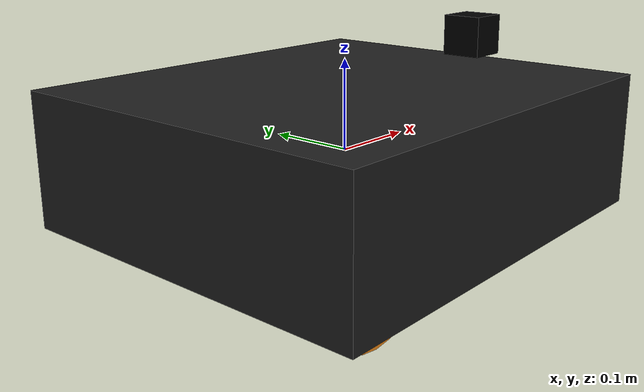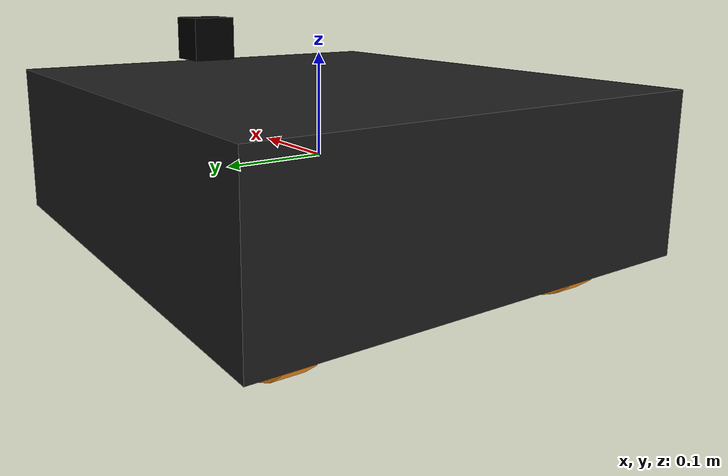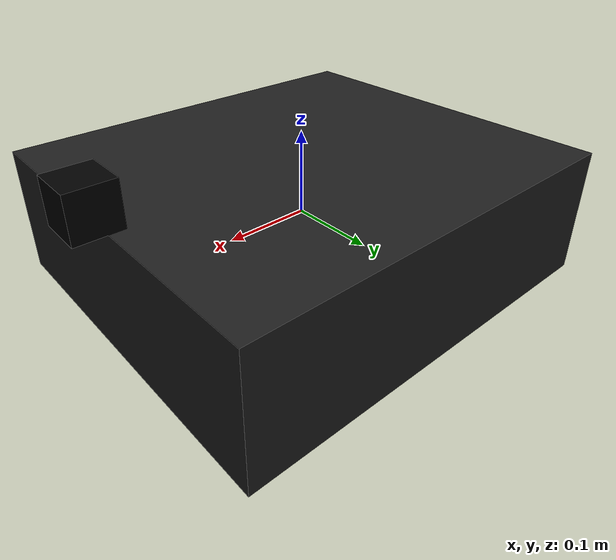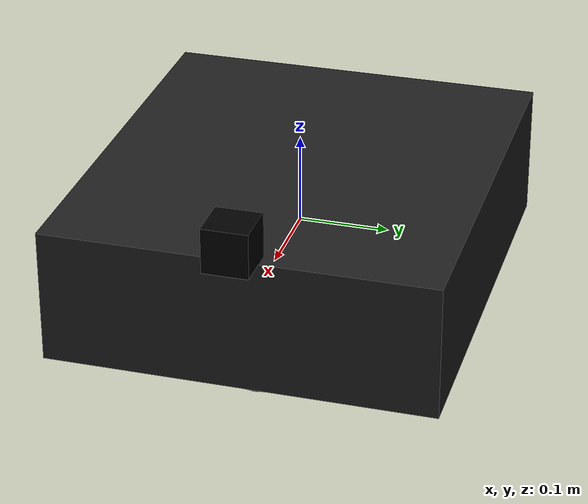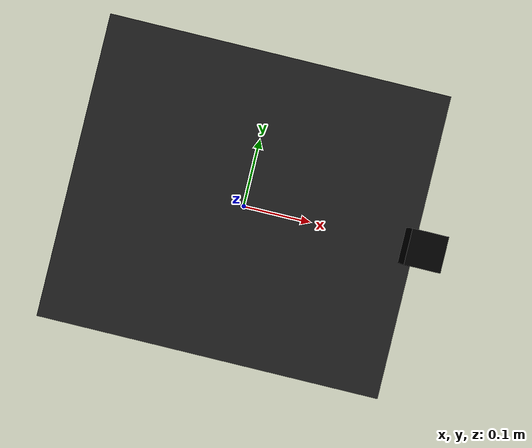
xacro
<?xml version="1.0"?>
<!-- Revolute-Revolute Manipulator -->
<robot name="orne_gamma" xmlns:xacro="http://ros.org/wiki/xacro">
  <!-- Constants for robot dimensions -->
  <xacro:property name="PI" value="3.1415926535897931"/>

  <!-- Import Rviz colors -->
  <xacro:include filename="$(find orne_description)/urdf/material_colors.xacro"/>
  <xacro:include filename="$(find orne_description)/urdf/gamma/orne_gamma.gazebo"/>
  <xacro:include filename="$(find orne_description)/urdf/sensors/hokuyo.urdf.xacro"/>
  <xacro:include filename="$(find orne_description)/urdf/gamma/orne_gamma_caster.urdf.xacro"/>

  <!--Base Footprint-->
  <link name="base_footprint" />

  <joint name="base_joint" type="fixed">
    <origin xyz="0 0 0" />
    <parent link="base_footprint" />
    <child link="base_link" />
  </joint>

  <!-- Base Link -->
  <link name="base_link">
    <visual>
      <origin xyz="0.0 0.0 0.0" rpy="0.0 0.0 0.0"/>>
      <geometry>
	    <box size=".485 .43 .15"/>
      </geometry>
    </visual>
    <collision name="collision">
      <origin xyz="0.0 0.0 0.0" rpy="0.0 0.0 0.0"/>>
      <geometry>
	    <box size=".485 .43 .15"/>
      </geometry>
    </collision>
   <inertial>
    <mass value="15" />
    <origin xyz="0 0 0" rpy="0 0 0"/>
    <inertia ixx="0.25925" ixy="0" ixz="0" iyy="0.32216" iyz="0" izz="0.52516" />
    </inertial>
 </link>

  <link name="left_wheel">
    <collision name="collision">
      <origin xyz="0.0 0.0 0.0" rpy="0.0 0.0 0.0"/>
      <geometry>
         <cylinder  length="0.03" radius="0.0725"/>
      </geometry>
    </collision>
    <visual name="visual">
      <origin xyz="0.0 0.0 0.0" rpy="0.0 0.0 0.0"/>
      <geometry>
        <cylinder  length="0.03" radius="0.0725"/>
      </geometry>
    </visual>
    <inertial>
      <mass value="1" />
      <origin xyz="0.0 0.0 0.0" rpy="0.0 0.0 0.0"/>
      <inertia ixx="0.001" ixy="0" ixz="0" iyy="0.002" iyz="0" izz="0.001" />
    </inertial>
  </link>

  <joint type="continuous" name="left_wheel_joint">
    <origin xyz="-0.15 0.15 -0.05" rpy="-1.57 0 0"/>
    <child link="left_wheel"></child>
    <parent link="base_link"></parent>
    <axis xyz="0 0 1"/>
    <limit effort="100" velocity="100.0"  lower="-5000" upper="5000" />
    <dynamics damping="0.1"/>
  </joint>

  <link name="right_wheel">
    <collision name="collision">
      <origin xyz="0.0 0.0 0.0" rpy="0.0 0.0 0.0"/>
      <geometry>
         <cylinder  length="0.03" radius="0.0725"/>
      </geometry>
    </collision>
    <visual name="visual">
      <origin xyz="0.0 0.0 0.0" rpy="0.0 0.0 0.0"/>
      <geometry>
        <cylinder  length="0.03" radius="0.0725"/>
      </geometry>
    </visual>
    <inertial>
      <mass value="1" />
      <origin xyz="0.0 0.0 0.0" rpy="0.0 0.0 0.0"/>
      <inertia ixx="0.001" ixy="0" ixz="0" iyy="0.002" iyz="0" izz="0.001" />
    </inertial>
  </link>

  <joint type="continuous" name="right_wheel_joint">
    <origin xyz="-0.15 -0.15 -0.05" rpy="-1.57 0 0"/>
    <child link="right_wheel"></child>
    <parent link="base_link"></parent>
    <axis xyz="0 0 1"/>
    <limit effort="100" velocity="100.0"  lower="-5000" upper="5000" />
    <dynamics damping="0.1"/>
  </joint>

  <xacro:sensor_hokuyo name="hokuyo" parent="base_link" size="0.05 0.05 0.05">
    <origin xyz="0.25 0 0.1" rpy="0 0 0"/>
  </xacro:sensor_hokuyo>

  <xacro:caster sub="0" parent="base_link" transX="0.15" transY="0.0" transZ="-0.075" />

  <transmission name="tran1">
    <type>transmission_interface/SimpleTransmission</type>
    <joint name="left_wheel_joint">
      <hardwareInterface>VelocityJointInterface</hardwareInterface>
    </joint>
    <actuator name="left_motor">
      <hardwareInterface>VelocityJointInterface</hardwareInterface>
      <mechanicalReduction>1</mechanicalReduction>
    </actuator>
  </transmission>

  <transmission name="tran2">
    <type>transmission_interface/SimpleTransmission</type>
    <joint name="right_wheel_joint">
      <hardwareInterface>VelocityJointInterface</hardwareInterface>
    </joint>
    <actuator name="right_motor">
      <hardwareInterface>VelocityJointInterface</hardwareInterface>
      <mechanicalReduction>1</mechanicalReduction>
    </actuator>
  </transmission>

  <joint name="camera_joint" type="fixed">
    <origin xyz="0.223 -0.011 0.565" rpy="0 0.124 0"/>
    <parent link="base_link"/>
    <child link="camera_link"/>
  </joint>

  <link name="camera_link">
    <collision>
      <origin xyz="0.005 0.011 0.013" rpy="0 0 0"/>
      <geometry>
        <box size="0.015 0.030 0.027"/>
      </geometry>
    </collision>
  </link>

  <joint name="camera_rgb_joint" type="fixed">
    <origin xyz="0.003 0.011 0.009" rpy="0 0 0"/>
    <parent link="camera_link"/>
    <child link="camera_rgb_frame"/>
  </joint>
  <link name="camera_rgb_frame"/>

  <joint name="camera_rgb_optical_joint" type="fixed">
    <origin xyz="0 0 0" rpy="-1.57 0 -1.57"/>
    <parent link="camera_rgb_frame"/>
    <child link="camera_rgb_optical_frame"/>
  </joint>
  <link name="camera_rgb_optical_frame"/>

  <joint name="camera_rgb_left_joint" type="fixed">
    <origin xyz="0.003 0.111 0.009" rpy="0 0 0.175"/>
    <parent link="camera_link"/>
    <child link="camera_rgb_left_frame"/>
  </joint>
  <link name="camera_rgb_left_frame"/>

  <joint name="camera_rgb_optical_left_joint" type="fixed">
    <origin xyz="0 0 0" rpy="-1.57 0 -1.57"/>
    <parent link="camera_rgb_left_frame"/>
    <child link="camera_rgb_optical_left_frame"/>
  </joint>
  <link name="camera_rgb_optical_left_frame"/>

  <joint name="camera_rgb_right_joint" type="fixed">
    <origin xyz="0.003 -0.089 0.009" rpy="0 0 -0.175"/>
    <parent link="camera_link"/>
    <child link="camera_rgb_right_frame"/>
  </joint>
  <link name="camera_rgb_right_frame"/>

  <joint name="camera_rgb_optical_right_joint" type="fixed">
    <origin xyz="0 0 0" rpy="-1.57 0 -1.57"/>
    <parent link="camera_rgb_right_frame"/>
    <child link="camera_rgb_optical_right_frame"/>
  </joint>
  <link name="camera_rgb_optical_right_frame"/>

</robot>

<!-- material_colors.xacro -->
<robot>
  <material name="black">
    <color rgba="0.0 0.0 0.0 1.0"/>
  </material>
  <material name="brown">
    <color rgba="${222/255} ${207/255} ${195/255} 1.0"/>
  </material>
  <material name="red">
    <color rgba="0.8 0.0 0.0 1.0"/>
  </material>
  <material name="orange">
    <color rgba="${255/255} ${108/255} ${10/255} 1.0"/>
  </material>
  <material name="yellow">
    <color rgba="0.8 0.8 0.0 1.0"/>
  </material>
  <material name="green">
    <color rgba="0.0 0.8 0.0 1.0"/>
  </material>
  <material name="cyan">
    <color rgba="0.0 0.8 0.8 1.0"/>
  </material>
  <material name="bule">
    <color rgba="0.0 0.0 0.8 1.0"/>
  </material>
  <material name="purple">
    <color rgba="0.8 0.0 0.8 1.0"/>
  </material>
  <material name="gray">
    <color rgba="0.5 0.5 0.5 1.0"/>
  </material>
  <material name="white">
    <color rgba="1.0 1.0 1.0 1.0"/>
  </material>
</robot>

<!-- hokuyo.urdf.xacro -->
<robot xmlns:xacro="http://ros.org/wiki/xacro" xmlns:controller="http://playerstage.sourceforge.net/gazebo/xmlschema/#controller" xmlns:interface="http://playerstage.sourceforge.net/gazebo/xmlschema/#interface" name="sensor_hokuyo">
  <xacro:macro name="sensor_hokuyo" params="name parent *origin size">
    <joint name="${name}_joint" type="fixed">
      <axis xyz="1 0 0"/>
      <xacro:insert_block name="origin"/>
      <parent link="${parent}"/>
      <child link="${name}_link"/>
    </joint>
    <link name="${name}_link">
      <inertial>
        <origin xyz="0.0 0.0 0.0" rpy="0.0 0.0 0.0"/>
        <mass value="0.2"/>
        <inertia ixx="0.005" ixy="0.0" ixz="0.0" iyy="0.005" iyz="0.0" izz="0.005"/>
      </inertial>
      <visual>
        <origin rpy="0 0 0" xyz="0 0 0"/>
        <geometry>
          <box size="${size}"/>
        </geometry>
        <material name="black"/>
      </visual>
    </link>
  </xacro:macro>
</robot>

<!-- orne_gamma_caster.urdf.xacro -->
<robot name="caster" xmlns:xacro="http://www.ros.org/wiki/xacro">

  <!-- Casters -->
  <xacro:property name="caster_radius" value="0.05250" /> <!-- in m -->
  <xacro:property name="caster_mass"   value="1.00" /> <!-- in kg-->

  <xacro:macro name="caster" params="sub parent transX transY transZ">
    <!-- sub: l,r 0,1,2,3 etc -->
    <!-- parent: parent link name -->
    <!-- transX transY transZ: xyz position -->

    <link name="caster_${sub}">
      <visual>
        <origin xyz="0 0 0" rpy="0 0 0" />
        <geometry>
          <sphere radius="${caster_radius}" />
        </geometry>
        <material name="Black" />
      </visual>
      <collision>
        <origin xyz="0 0 0" rpy="0 0 0" />
        <geometry>
          <sphere radius="${caster_radius}" />
        </geometry>
      </collision>
      <inertial>
        <mass value="${caster_mass}" />
        <origin xyz="0 0 0" />
        <inertia ixx="0.001" ixy="0.0" ixz="0.0" iyy="0.001" iyz="0.0" izz="0.001"/>
      </inertial>
    </link>

    <gazebo reference="caster_${sub}">
      <turnGravityOff>false</turnGravityOff>
      <material>Gazebo/Black</material>
      <mu1 value="0.0"/>
      <mu2 value="0.0"/>
    </gazebo>

    <joint name="caster_${sub}_joint" type="fixed">
      <parent link="${parent}"/>
      <child link="caster_${sub}"/>
      <origin xyz="${transX} ${transY} ${transZ}" rpy="0 0 0" />
    </joint>

  </xacro:macro>
</robot>
